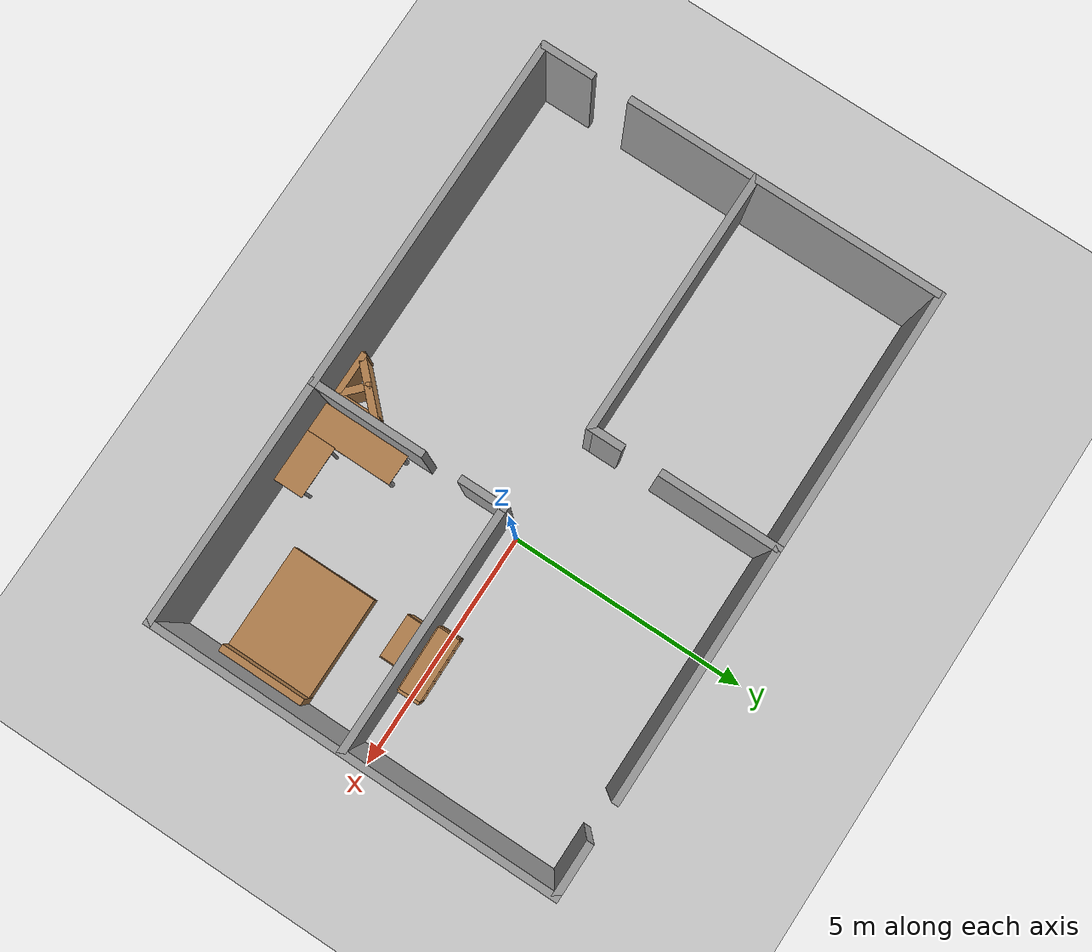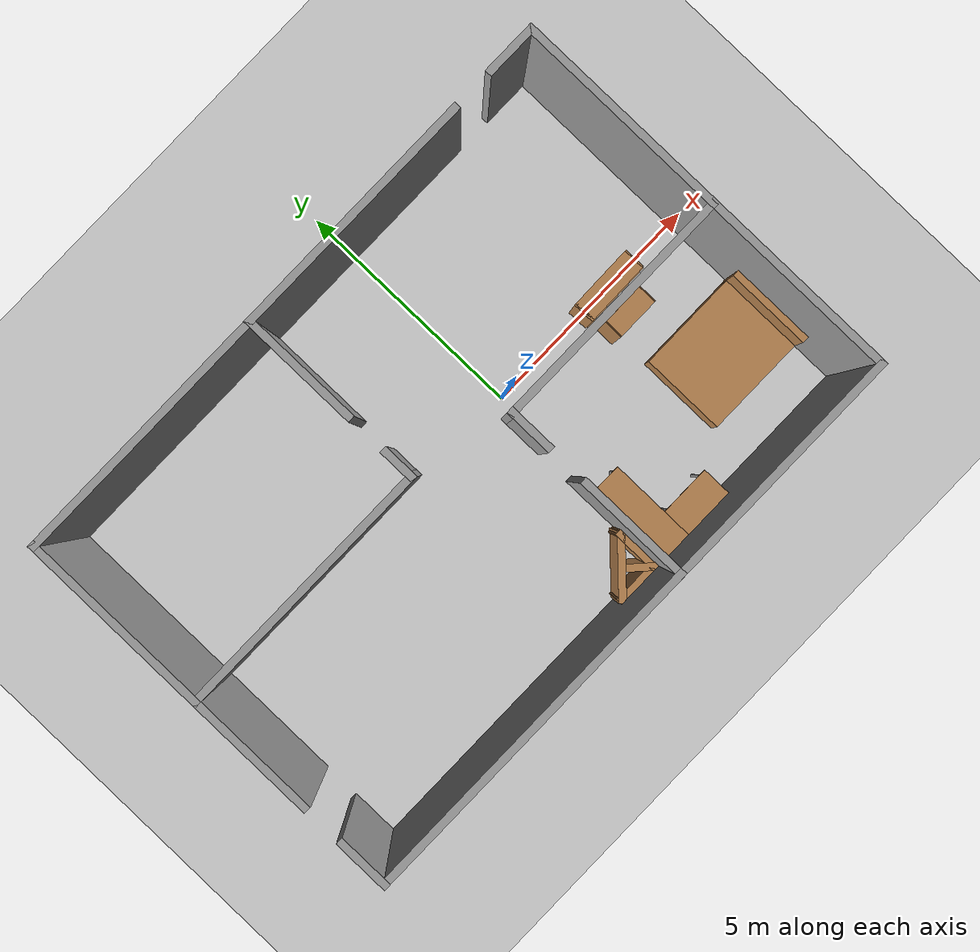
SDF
<sdf version="1.6">
 <world name="default">
  <model name="ground_plane">
   <static>1</static>
   <link name="link">
    <collision name="collision">
     <geometry><plane><normal>0 0 1</normal><size>100 100</size></plane></geometry>
     <surface><friction><ode><mu>100</mu><mu2>50</mu2></ode></friction></surface>
    </collision>
    <visual name="visual">
     <cast_shadows>0</cast_shadows>
     <geometry><plane><normal>0 0 1</normal><size>100 100</size></plane></geometry>
     <material>
      <script><uri>file://media/materials/scripts/gazebo.material</uri><name>Gazebo/Grey</name></script>
     </material>
    </visual>
   </link>
  </model>
  <model name="wall">
   <pose>-1.40388 -0.16507 0 0 -0 0</pose>
   <link name="Wall_1">
    <collision name="Wall_1_Collision">
     <geometry><box><size>5.5 0.15 2.5</size></box></geometry>
     <pose>0 0 1.25 0 -0 0</pose>
    </collision>
    <visual name="Wall_1_Visual">
     <pose>0 0 1.25 0 -0 0</pose>
     <geometry><box><size>5.5 0.15 2.5</size></box></geometry>
     <material>
      <script><uri>file://media/materials/scripts/gazebo.material</uri><name>Gazebo/Grey</name></script>
      <ambient>1 1 1 1</ambient>
     </material>
     <meta><layer>0</layer></meta>
    </visual>
    <pose>-3.5 4.175 0 0 -0 0</pose>
   </link>
   <link name="Wall_11">
    <collision name="Wall_11_Collision">
     <geometry><box><size>2.75 0.15 2.5</size></box></geometry>
     <pose>0 0 1.25 0 -0 0</pose>
    </collision>
    <visual name="Wall_11_Visual">
     <pose>0 0 1.25 0 -0 0</pose>
     <geometry><box><size>2.75 0.15 2.5</size></box></geometry>
     <material>
      <script><uri>file://media/materials/scripts/gazebo.material</uri><name>Gazebo/Grey</name></script>
      <ambient>1 1 1 1</ambient>
     </material>
     <meta><layer>0</layer></meta>
    </visual>
    <pose>-6.175 -0.975 0 0 0 -1.5708</pose>
   </link>
   <link name="Wall_117">
    <collision name="Wall_117_Collision">
     <geometry><box><size>0.75 0.15 2.5</size></box></geometry>
     <pose>0 0 1.25 0 -0 0</pose>
    </collision>
    <visual name="Wall_117_Visual">
     <pose>0 0 1.25 0 -0 0</pose>
     <geometry><box><size>0.75 0.15 2.5</size></box></geometry>
     <material>
      <script><uri>file://media/materials/scripts/gazebo.material</uri><name>Gazebo/Grey</name></script>
      <ambient>1 1 1 1</ambient>
     </material>
     <meta><layer>0</layer></meta>
    </visual>
    <pose>-0.825 0.625 0 0 0 -1.5708</pose>
   </link>
   <link name="Wall_119">
    <collision name="Wall_119_Collision">
     <geometry><box><size>5.5 0.15 2.5</size></box></geometry>
     <pose>0 0 1.25 0 -0 0</pose>
    </collision>
    <visual name="Wall_119_Visual">
     <pose>0 0 1.25 0 -0 0</pose>
     <geometry><box><size>5.5 0.15 2.5</size></box></geometry>
     <material>
      <script><uri>file://media/materials/scripts/gazebo.material</uri><name>Gazebo/Grey</name></script>
      <ambient>1 1 1 1</ambient>
     </material>
     <meta><layer>0</layer></meta>
    </visual>
    <pose>-3.5 0.325 0 0 -0 3.14159</pose>
   </link>
   <link name="Wall_122">
    <collision name="Wall_122_Collision">
     <geometry><box><size>5.15 0.15 2.5</size></box></geometry>
     <pose>0 0 1.25 0 -0 0</pose>
    </collision>
    <visual name="Wall_122_Visual">
     <pose>0 0 1.25 0 -0 0</pose>
     <geometry><box><size>5.15 0.15 2.5</size></box></geometry>
     <material>
      <script><uri>file://media/materials/scripts/gazebo.material</uri><name>Gazebo/Grey</name></script>
      <ambient>1 1 1 1</ambient>
     </material>
     <meta><layer>0</layer></meta>
    </visual>
    <pose>3.675 -0.175 0 0 -0 3.14159</pose>
   </link>
   <link name="Wall_124">
    <collision name="Wall_124_Collision">
     <geometry><box><size>1 0.15 2.5</size></box></geometry>
     <pose>0 0 1.25 0 -0 0</pose>
    </collision>
    <visual name="Wall_124_Visual">
     <pose>0 0 1.25 0 -0 0</pose>
     <geometry><box><size>1 0.15 2.5</size></box></geometry>
     <material>
      <script><uri>file://media/materials/scripts/gazebo.material</uri><name>Gazebo/Grey</name></script>
      <ambient>1 1 1 1</ambient>
     </material>
     <meta><layer>0</layer></meta>
    </visual>
    <pose>1.175 -0.6 0 0 0 -1.5708</pose>
   </link>
   <link name="Wall_141">
    <collision name="Wall_141_Collision">
     <geometry><box><size>2.4 0.15 2.5</size></box></geometry>
     <pose>0 0 1.25 0 -0 0</pose>
    </collision>
    <visual name="Wall_141_Visual">
     <pose>0 0 1.25 0 -0 0</pose>
     <geometry><box><size>2.4 0.15 2.5</size></box></geometry>
     <material>
      <script><uri>file://media/materials/scripts/gazebo.material</uri><name>Gazebo/Grey</name></script>
      <ambient>1 1 1 1</ambient>
     </material>
     <meta><layer>0</layer></meta>
    </visual>
    <pose>1.175 -3.05 0 0 0 -1.5708</pose>
   </link>
   <link name="Wall_15">
    <collision name="Wall_15_Collision">
     <geometry><box><size>1.15 0.15 2.5</size></box></geometry>
     <pose>0 0 1.25 0 -0 0</pose>
    </collision>
    <visual name="Wall_15_Visual">
     <pose>0 0 1.25 0 -0 0</pose>
     <geometry><box><size>1.15 0.15 2.5</size></box></geometry>
     <material>
      <script><uri>file://media/materials/scripts/gazebo.material</uri><name>Gazebo/Grey</name></script>
      <ambient>1 1 1 1</ambient>
     </material>
     <meta><layer>0</layer></meta>
    </visual>
    <pose>-6.175 -3.675 0 0 0 -1.5708</pose>
   </link>
   <link name="Wall_17">
    <collision name="Wall_17_Collision">
     <geometry><box><size>7.5 0.15 2.5</size></box></geometry>
     <pose>0 0 1.25 0 -0 0</pose>
    </collision>
    <visual name="Wall_17_Visual">
     <pose>0 0 1.25 0 -0 0</pose>
     <geometry><box><size>7.5 0.15 2.5</size></box></geometry>
     <material>
      <script><uri>file://media/materials/scripts/gazebo.material</uri><name>Gazebo/Grey</name></script>
      <ambient>1 1 1 1</ambient>
     </material>
     <meta><layer>0</layer></meta>
    </visual>
    <pose>-2.5 -4.175 0 0 -0 0</pose>
   </link>
   <link name="Wall_18">
    <collision name="Wall_18_Collision">
     <geometry><box><size>5.15 0.15 2.5</size></box></geometry>
     <pose>0 0 1.25 0 -0 0</pose>
    </collision>
    <visual name="Wall_18_Visual">
     <pose>0 0 1.25 0 -0 0</pose>
     <geometry><box><size>5.15 0.15 2.5</size></box></geometry>
     <material>
      <script><uri>file://media/materials/scripts/gazebo.material</uri><name>Gazebo/Grey</name></script>
      <ambient>1 1 1 1</ambient>
     </material>
     <meta><layer>0</layer></meta>
    </visual>
    <pose>3.675 -4.175 0 0 -0 0</pose>
   </link>
   <link name="Wall_2">
    <collision name="Wall_2_Collision">
     <geometry><box><size>5.25 0.15 2.5</size></box></geometry>
     <pose>0 0 1.25 0 -0 0</pose>
    </collision>
    <visual name="Wall_2_Visual">
     <pose>0 0 1.25 0 -0 0</pose>
     <geometry><box><size>5.25 0.15 2.5</size></box></geometry>
     <material>
      <script><uri>file://media/materials/scripts/gazebo.material</uri><name>Gazebo/Grey</name></script>
      <ambient>1 1 1 1</ambient>
     </material>
     <meta><layer>0</layer></meta>
    </visual>
    <pose>1.725 4.175 0 0 -0 0</pose>
   </link>
   <link name="Wall_20">
    <collision name="Wall_20_Collision">
     <geometry><box><size>4.5 0.15 2.5</size></box></geometry>
     <pose>0 0 1.25 0 -0 0</pose>
    </collision>
    <visual name="Wall_20_Visual">
     <pose>0 0 1.25 0 -0 0</pose>
     <geometry><box><size>4.5 0.15 2.5</size></box></geometry>
     <material>
      <script><uri>file://media/materials/scripts/gazebo.material</uri><name>Gazebo/Grey</name></script>
      <ambient>1 1 1 1</ambient>
     </material>
     <meta><layer>0</layer></meta>
    </visual>
    <pose>6.175 2 0 0 0 -1.5708</pose>
   </link>
   <link name="Wall_21">
    <collision name="Wall_21_Collision">
     <geometry><box><size>4.15 0.15 2.5</size></box></geometry>
     <pose>0 0 1.25 0 -0 0</pose>
    </collision>
    <visual name="Wall_21_Visual">
     <pose>0 0 1.25 0 -0 0</pose>
     <geometry><box><size>4.15 0.15 2.5</size></box></geometry>
     <material>
      <script><uri>file://media/materials/scripts/gazebo.material</uri><name>Gazebo/Grey</name></script>
      <ambient>1 1 1 1</ambient>
     </material>
     <meta><layer>0</layer></meta>
    </visual>
    <pose>6.175 -2.175 0 0 0 -1.5708</pose>
   </link>
   <link name="Wall_26">
    <collision name="Wall_26_Collision">
     <geometry><box><size>2.5 0.15 2.5</size></box></geometry>
     <pose>0 0 1.25 0 -0 0</pose>
    </collision>
    <visual name="Wall_26_Visual">
     <pose>0 0 1.25 0 -0 0</pose>
     <geometry><box><size>2.5 0.15 2.5</size></box></geometry>
     <material>
      <script><uri>file://media/materials/scripts/gazebo.material</uri><name>Gazebo/Grey</name></script>
      <ambient>1 1 1 1</ambient>
     </material>
     <meta><layer>0</layer></meta>
    </visual>
    <pose>-0.825 3 0 0 0 -1.5708</pose>
   </link>
   <link name="Wall_5">
    <collision name="Wall_5_Collision">
     <geometry><box><size>1.15 0.15 2.5</size></box></geometry>
     <pose>0 0 1.25 0 -0 0</pose>
    </collision>
    <visual name="Wall_5_Visual">
     <pose>0 0 1.25 0 -0 0</pose>
     <geometry><box><size>1.15 0.15 2.5</size></box></geometry>
     <material>
      <script><uri>file://media/materials/scripts/gazebo.material</uri><name>Gazebo/Grey</name></script>
      <ambient>1 1 1 1</ambient>
     </material>
     <meta><layer>0</layer></meta>
    </visual>
    <pose>5.675 4.175 0 0 -0 0</pose>
   </link>
   <link name="Wall_7">
    <collision name="Wall_7_Collision">
     <geometry><box><size>4 0.15 2.5</size></box></geometry>
     <pose>0 0 1.25 0 -0 0</pose>
    </collision>
    <visual name="Wall_7_Visual">
     <pose>0 0 1.25 0 -0 0</pose>
     <geometry><box><size>4 0.15 2.5</size></box></geometry>
     <material>
      <script><uri>file://media/materials/scripts/gazebo.material</uri><name>Gazebo/Grey</name></script>
      <ambient>1 1 1 1</ambient>
     </material>
     <meta><layer>0</layer></meta>
    </visual>
    <pose>-6.175 2.25 0 0 0 -1.5708</pose>
   </link>
   <static>1</static>
  </model>
  <model name="bookshelf">
   <static>1</static>
   <link name="link">
    <inertial><mass>1</mass></inertial>
    <collision name="back">
     <pose>0 0.005 0.6 0 -0 0</pose>
     <geometry><box><size>0.9 0.01 1.2</size></box></geometry>
    </collision>
    <visual name="visual1">
     <pose>0 0.005 0.6 0 -0 0</pose>
     <geometry><box><size>0.9 0.01 1.2</size></box></geometry>
     <material>
      <script><uri>file://media/materials/scripts/gazebo.material</uri><name>Gazebo/Wood</name></script>
     </material>
    </visual>
    <collision name="left_side">
     <pose>0.45 -0.195 0.6 0 -0 0</pose>
     <geometry><box><size>0.02 0.4 1.2</size></box></geometry>
    </collision>
    <visual name="visual2">
     <pose>0.45 -0.195 0.6 0 -0 0</pose>
     <geometry><box><size>0.02 0.4 1.2</size></box></geometry>
     <material>
      <script><uri>file://media/materials/scripts/gazebo.material</uri><name>Gazebo/Wood</name></script>
     </material>
    </visual>
    <collision name="right_side">
     <pose>-0.45 -0.195 0.6 0 -0 0</pose>
     <geometry><box><size>0.02 0.4 1.2</size></box></geometry>
    </collision>
    <visual name="visual3">
     <pose>-0.45 -0.195 0.6 0 -0 0</pose>
     <geometry><box><size>0.02 0.4 1.2</size></box></geometry>
     <material>
      <script><uri>file://media/materials/scripts/gazebo.material</uri><name>Gazebo/Wood</name></script>
     </material>
    </visual>
    <collision name="bottom">
     <pose>0 -0.195 0.03 0 -0 0</pose>
     <geometry><box><size>0.88 0.4 0.06</size></box></geometry>
    </collision>
    <visual name="visual4">
     <pose>0 -0.195 0.03 0 -0 0</pose>
     <geometry><box><size>0.88 0.4 0.06</size></box></geometry>
     <material>
      <script><uri>file://media/materials/scripts/gazebo.material</uri><name>Gazebo/Wood</name></script>
     </material>
    </visual>
    <collision name="top">
     <pose>0 -0.195 1.19 0 -0 0</pose>
     <geometry><box><size>0.88 0.4 0.02</size></box></geometry>
    </collision>
    <visual name="visual5">
     <pose>0 -0.195 1.19 0 -0 0</pose>
     <geometry><box><size>0.88 0.4 0.02</size></box></geometry>
     <material>
      <script><uri>file://media/materials/scripts/gazebo.material</uri><name>Gazebo/Wood</name></script>
     </material>
    </visual>
    <collision name="low_shelf">
     <pose>0 -0.195 0.43 0 -0 0</pose>
     <geometry><box><size>0.88 0.4 0.02</size></box></geometry>
    </collision>
    <visual name="visual6">
     <pose>0 -0.195 0.43 0 -0 0</pose>
     <geometry><box><size>0.88 0.4 0.02</size></box></geometry>
     <material>
      <script><uri>file://media/materials/scripts/gazebo.material</uri><name>Gazebo/Wood</name></script>
     </material>
    </visual>
    <collision name="high_shelf">
     <pose>0 -0.195 0.8 0 -0 0</pose>
     <geometry><box><size>0.88 0.4 0.02</size></box></geometry>
    </collision>
    <visual name="visual7">
     <pose>0 -0.195 0.8 0 -0 0</pose>
     <geometry><box><size>0.88 0.4 0.02</size></box></geometry>
     <material>
      <script><uri>file://media/materials/scripts/gazebo.material</uri><name>Gazebo/Wood</name></script>
     </material>
    </visual>
   </link>
   <pose>2.71035 -0.426982 0 0 -0 0</pose>
  </model>
  <model name="cabinet_0">
   <link name="cabinet_bottom_plate">
    <pose>0.01959 0.54724 0.029947 0 -0 0</pose>
    <inertial>
     <pose>0 0 -0.0004 0 -0 0</pose>
     <inertia><ixx>11.2547</ixx><ixy>0</ixy><ixz>0</ixz><iyy>1.26163</iyy><iyz>0</iyz><izz>12.5113</izz></inertia>
     <mass>74.616</mass>
    </inertial>
    <visual name="cabinet_bottom_plate_geom_visual">
     <pose>0 0 0.01 0 -0 0</pose>
     <geometry><box><size>0.45 1.34522 0.02</size></box></geometry>
     <material>
      <script><uri>file://media/materials/scripts/gazebo.material</uri><name>Gazebo/Wood</name></script>
      <shader type="pixel"><normal_map>__default__</normal_map></shader>
      <ambient>1 1 1 1</ambient>
      <diffuse>1 1 1 1</diffuse>
      <specular>0.2 0.2 0.2 1</specular>
      <emissive>0 0 0 1</emissive>
     </material>
    </visual>
    <visual name="cabinet_bottom_plate_geom_cabinet_back_plate_visual">
     <pose>0.235 0 0.51 0 -0 0</pose>
     <geometry><box><size>0.02 1.34522 1.02</size></box></geometry>
     <material>
      <script><uri>file://media/materials/scripts/gazebo.material</uri><name>Gazebo/Wood</name></script>
      <shader type="pixel"><normal_map>__default__</normal_map></shader>
      <ambient>1 1 1 1</ambient>
      <diffuse>1 1 1 1</diffuse>
      <specular>0.2 0.2 0.2 1</specular>
      <emissive>0 0 0 1</emissive>
     </material>
    </visual>
    <visual name="cabinet_bottom_plate_geom_cabinet_left_plate_visual">
     <pose>0 0.672609 0.51 0 -0 0</pose>
     <geometry><box><size>0.45 0.059588 1.02</size></box></geometry>
     <material>
      <script><uri>file://media/materials/scripts/gazebo.material</uri><name>Gazebo/Wood</name></script>
      <shader type="pixel"><normal_map>__default__</normal_map></shader>
      <ambient>1 1 1 1</ambient>
      <diffuse>1 1 1 1</diffuse>
      <specular>0.2 0.2 0.2 1</specular>
      <emissive>0 0 0 1</emissive>
     </material>
    </visual>
    <visual name="cabinet_bottom_plate_geom_cabinet_middle_plate_visual">
     <pose>0 0 0.51 0 -0 0</pose>
     <geometry><box><size>0.45 1.34522 0.02</size></box></geometry>
     <material>
      <script><uri>file://media/materials/scripts/gazebo.material</uri><name>Gazebo/Wood</name></script>
      <shader type="pixel"><normal_map>__default__</normal_map></shader>
      <ambient>1 1 1 1</ambient>
      <diffuse>1 1 1 1</diffuse>
      <specular>0.2 0.2 0.2 1</specular>
      <emissive>0 0 0 1</emissive>
     </material>
    </visual>
    <visual name="cabinet_bottom_plate_geom_cabinet_right_plate_visual">
     <pose>0 -0.672609 0.51 0 -0 0</pose>
     <geometry><box><size>0.45 0.059588 1.02</size></box></geometry>
     <material>
      <script><uri>file://media/materials/scripts/gazebo.material</uri><name>Gazebo/Wood</name></script>
      <shader type="pixel"><normal_map>__default__</normal_map></shader>
      <ambient>1 1 1 1</ambient>
      <diffuse>1 1 1 1</diffuse>
      <specular>0.2 0.2 0.2 1</specular>
      <emissive>0 0 0 1</emissive>
     </material>
    </visual>
    <visual name="cabinet_bottom_plate_geom_cabinet_top_plate_visual">
     <pose>0 0 1.01 0 -0 0</pose>
     <geometry><box><size>0.45 1.34522 0.02</size></box></geometry>
     <material>
      <script><uri>file://media/materials/scripts/gazebo.material</uri><name>Gazebo/Wood</name></script>
      <shader type="pixel"><normal_map>__default__</normal_map></shader>
      <ambient>1 1 1 1</ambient>
      <diffuse>1 1 1 1</diffuse>
      <specular>0.2 0.2 0.2 1</specular>
      <emissive>0 0 0 1</emissive>
     </material>
    </visual>
    <collision name="cabinet_bottom_plate_geom">
     <pose>0 0 0.01 0 -0 0</pose>
     <geometry><box><size>0.45 1.34522 0.02</size></box></geometry>
     <surface>
      <friction>
       <ode><mu>1</mu><mu2>1</mu2><fdir1>0 0 0</fdir1><slip1>0</slip1><slip2>0</slip2></ode>
       <torsional>
        <coefficient>1</coefficient>
        <patch_radius>0</patch_radius>
        <surface_radius>0</surface_radius>
        <use_patch_radius>1</use_patch_radius>
        <ode><slip>0</slip></ode>
       </torsional>
      </friction>
      <bounce><restitution_coefficient>0</restitution_coefficient><threshold>1e+06</threshold></bounce>
      <contact>
       <collide_without_contact>0</collide_without_contact>
       <collide_without_contact_bitmask>1</collide_without_contact_bitmask>
       <collide_bitmask>1</collide_bitmask>
       <ode>
        <soft_cfm>0</soft_cfm>
        <soft_erp>0.2</soft_erp>
        <kp>1e+13</kp>
        <kd>1</kd>
        <max_vel>0.01</max_vel>
        <min_depth>0</min_depth>
       </ode>
       <bullet>
        <split_impulse>1</split_impulse>
        <split_impulse_penetration_threshold>-0.01</split_impulse_penetration_threshold>
        <soft_cfm>0</soft_cfm>
        <soft_erp>0.2</soft_erp>
        <kp>1e+13</kp>
        <kd>1</kd>
       </bullet>
      </contact>
     </surface>
    </collision>
    <collision name="cabinet_bottom_plate_geom_cabinet_back_plate">
     <pose>0.235 0 0.51 0 -0 0</pose>
     <geometry><box><size>0.02 1.34523 1.02</size></box></geometry>
     <surface>
      <friction>
       <ode><mu>1</mu><mu2>1</mu2><fdir1>0 0 0</fdir1><slip1>0</slip1><slip2>0</slip2></ode>
       <torsional>
        <coefficient>1</coefficient>
        <patch_radius>0</patch_radius>
        <surface_radius>0</surface_radius>
        <use_patch_radius>1</use_patch_radius>
        <ode><slip>0</slip></ode>
       </torsional>
      </friction>
      <bounce><restitution_coefficient>0</restitution_coefficient><threshold>1e+06</threshold></bounce>
      <contact>
       <collide_without_contact>0</collide_without_contact>
       <collide_without_contact_bitmask>1</collide_without_contact_bitmask>
       <collide_bitmask>1</collide_bitmask>
       <ode>
        <soft_cfm>0</soft_cfm>
        <soft_erp>0.2</soft_erp>
        <kp>1e+13</kp>
        <kd>1</kd>
        <max_vel>0.01</max_vel>
        <min_depth>0</min_depth>
       </ode>
       <bullet>
        <split_impulse>1</split_impulse>
        <split_impulse_penetration_threshold>-0.01</split_impulse_penetration_threshold>
        <soft_cfm>0</soft_cfm>
        <soft_erp>0.2</soft_erp>
        <kp>1e+13</kp>
        <kd>1</kd>
       </bullet>
      </contact>
     </surface>
    </collision>
    <collision name="cabinet_bottom_plate_geom_cabinet_middle_plate">
     <pose>0 0 0.51 0 -0 0</pose>
     <geometry><box><size>0.45 1.34522 0.02</size></box></geometry>
     <surface>
      <friction>
       <ode><mu>1</mu><mu2>1</mu2><fdir1>0 0 0</fdir1><slip1>0</slip1><slip2>0</slip2></ode>
       <torsional>
        <coefficient>1</coefficient>
        <patch_radius>0</patch_radius>
        <surface_radius>0</surface_radius>
        <use_patch_radius>1</use_patch_radius>
        <ode><slip>0</slip></ode>
       </torsional>
      </friction>
      <bounce><restitution_coefficient>0</restitution_coefficient><threshold>1e+06</threshold></bounce>
      <contact>
       <collide_without_contact>0</collide_without_contact>
       <collide_without_contact_bitmask>1</collide_without_contact_bitmask>
       <collide_bitmask>1</collide_bitmask>
       <ode>
        <soft_cfm>0</soft_cfm>
        <soft_erp>0.2</soft_erp>
        <kp>1e+13</kp>
        <kd>1</kd>
        <max_vel>0.01</max_vel>
        <min_depth>0</min_depth>
       </ode>
       <bullet>
        <split_impulse>1</split_impulse>
        <split_impulse_penetration_threshold>-0.01</split_impulse_penetration_threshold>
        <soft_cfm>0</soft_cfm>
        <soft_erp>0.2</soft_erp>
        <kp>1e+13</kp>
        <kd>1</kd>
       </bullet>
      </contact>
     </surface>
    </collision>
    <collision name="cabinet_bottom_plate_geom_cabinet_left_plate">
     <pose>0 0.672609 0.51 0 -0 0</pose>
     <geometry><box><size>0.45 0.059588 1.02</size></box></geometry>
     <surface>
      <friction>
       <ode><mu>1</mu><mu2>1</mu2><fdir1>0 0 0</fdir1><slip1>0</slip1><slip2>0</slip2></ode>
       <torsional>
        <coefficient>1</coefficient>
        <patch_radius>0</patch_radius>
        <surface_radius>0</surface_radius>
        <use_patch_radius>1</use_patch_radius>
        <ode><slip>0</slip></ode>
       </torsional>
      </friction>
      <bounce><restitution_coefficient>0</restitution_coefficient><threshold>1e+06</threshold></bounce>
      <contact>
       <collide_without_contact>0</collide_without_contact>
       <collide_without_contact_bitmask>1</collide_without_contact_bitmask>
       <collide_bitmask>1</collide_bitmask>
       <ode>
        <soft_cfm>0</soft_cfm>
        <soft_erp>0.2</soft_erp>
        <kp>1e+13</kp>
        <kd>1</kd>
        <max_vel>0.01</max_vel>
        <min_depth>0</min_depth>
       </ode>
       <bullet>
        <split_impulse>1</split_impulse>
        <split_impulse_penetration_threshold>-0.01</split_impulse_penetration_threshold>
        <soft_cfm>0</soft_cfm>
        <soft_erp>0.2</soft_erp>
        <kp>1e+13</kp>
        <kd>1</kd>
       </bullet>
      </contact>
     </surface>
    </collision>
    <collision name="cabinet_bottom_plate_geom_cabinet_right_plate">
     <pose>0 -0.672609 0.51 0 -0 0</pose>
     <geometry><box><size>0.45 0.059588 1.02</size></box></geometry>
     <surface>
      <friction>
       <ode><mu>1</mu><mu2>1</mu2><fdir1>0 0 0</fdir1><slip1>0</slip1><slip2>0</slip2></ode>
       <torsional>
        <coefficient>1</coefficient>
        <patch_radius>0</patch_radius>
        <surface_radius>0</surface_radius>
        <use_patch_radius>1</use_patch_radius>
        <ode><slip>0</slip></ode>
       </torsional>
      </friction>
      <bounce><restitution_coefficient>0</restitution_coefficient><threshold>1e+06</threshold></bounce>
      <contact>
       <collide_without_contact>0</collide_without_contact>
       <collide_without_contact_bitmask>1</collide_without_contact_bitmask>
       <collide_bitmask>1</collide_bitmask>
       <ode>
        <soft_cfm>0</soft_cfm>
        <soft_erp>0.2</soft_erp>
        <kp>1e+13</kp>
        <kd>1</kd>
        <max_vel>0.01</max_vel>
        <min_depth>0</min_depth>
       </ode>
       <bullet>
        <split_impulse>1</split_impulse>
        <split_impulse_penetration_threshold>-0.01</split_impulse_penetration_threshold>
        <soft_cfm>0</soft_cfm>
        <soft_erp>0.2</soft_erp>
        <kp>1e+13</kp>
        <kd>1</kd>
       </bullet>
      </contact>
     </surface>
    </collision>
    <collision name="cabinet_bottom_plate_geom_cabinet_top_plate">
     <pose>0 0 1.01 0 -0 0</pose>
     <geometry><box><size>0.45 1.34522 0.02</size></box></geometry>
     <surface>
      <friction>
       <ode><mu>1</mu><mu2>1</mu2><fdir1>0 0 0</fdir1><slip1>0</slip1><slip2>0</slip2></ode>
       <torsional>
        <coefficient>1</coefficient>
        <patch_radius>0</patch_radius>
        <surface_radius>0</surface_radius>
        <use_patch_radius>1</use_patch_radius>
        <ode><slip>0</slip></ode>
       </torsional>
      </friction>
      <bounce><restitution_coefficient>0</restitution_coefficient><threshold>1e+06</threshold></bounce>
      <contact>
       <collide_without_contact>0</collide_without_contact>
       <collide_without_contact_bitmask>1</collide_without_contact_bitmask>
       <collide_bitmask>1</collide_bitmask>
       <ode>
        <soft_cfm>0</soft_cfm>
        <soft_erp>0.2</soft_erp>
        <kp>1e+13</kp>
        <kd>1</kd>
        <max_vel>0.01</max_vel>
        <min_depth>0</min_depth>
       </ode>
       <bullet>
        <split_impulse>1</split_impulse>
        <split_impulse_penetration_threshold>-0.01</split_impulse_penetration_threshold>
        <soft_cfm>0</soft_cfm>
        <soft_erp>0.2</soft_erp>
        <kp>1e+13</kp>
        <kd>1</kd>
       </bullet>
      </contact>
     </surface>
    </collision>
   </link>
   <static>1</static>
   <pose>2.26774 0.007381 0 0 0 -1.55636</pose>
  </model>
  <model name="table_0_0">
   <link name="link">
    <pose>0.121367 0.101535 0 0 -0 0</pose>
    <inertial>
     <inertia><ixx>0</ixx><ixy>0</ixy><ixz>0</ixz><iyy>0</iyy><iyz>0</iyz><izz>0</izz></inertia>
     <mass>0</mass>
    </inertial>
    <visual name="visual1">
     <pose>0 0 1 0 -0 0</pose>
     <geometry><box><size>1.0961 0.633078 0.03</size></box></geometry>
     <material>
      <script><uri>file://media/materials/scripts/gazebo.material</uri><name>Gazebo/Wood</name></script>
      <shader type="pixel"><normal_map>__default__</normal_map></shader>
      <ambient>1 1 1 1</ambient>
      <diffuse>1 1 1 1</diffuse>
      <specular>0.2 0.2 0.2 1</specular>
      <emissive>0 0 0 1</emissive>
     </material>
    </visual>
    <visual name="front_right_leg">
     <pose>0.45 -0.25 0.5 0 -0 0</pose>
     <geometry><cylinder><radius>0.0304</radius><length>1</length></cylinder></geometry>
     <material>
      <script><uri>file://media/materials/scripts/gazebo.material</uri><name>Gazebo/Grey</name></script>
      <shader type="pixel"><normal_map>__default__</normal_map></shader>
      <ambient>0.3 0.3 0.3 1</ambient>
      <diffuse>0.7 0.7 0.7 1</diffuse>
      <specular>0.01 0.01 0.01 1</specular>
      <emissive>0 0 0 1</emissive>
     </material>
    </visual>
    <visual name="front_left_leg">
     <pose>0.45 0.25 0.5 0 -0 0</pose>
     <geometry><cylinder><radius>0.0304</radius><length>1</length></cylinder></geometry>
     <material>
      <script><uri>file://media/materials/scripts/gazebo.material</uri><name>Gazebo/Grey</name></script>
      <shader type="pixel"><normal_map>__default__</normal_map></shader>
      <ambient>0.3 0.3 0.3 1</ambient>
      <diffuse>0.7 0.7 0.7 1</diffuse>
      <specular>0.01 0.01 0.01 1</specular>
      <emissive>0 0 0 1</emissive>
     </material>
    </visual>
    <visual name="back_right_leg">
     <pose>-0.45 -0.25 0.5 0 -0 0</pose>
     <geometry><cylinder><radius>0.0304</radius><length>1</length></cylinder></geometry>
     <material>
      <script><uri>file://media/materials/scripts/gazebo.material</uri><name>Gazebo/Grey</name></script>
      <shader type="pixel"><normal_map>__default__</normal_map></shader>
      <ambient>0.3 0.3 0.3 1</ambient>
      <diffuse>0.7 0.7 0.7 1</diffuse>
      <specular>0.01 0.01 0.01 1</specular>
      <emissive>0 0 0 1</emissive>
     </material>
    </visual>
    <visual name="back_left_leg">
     <pose>-0.45 0.25 0.5 0 -0 0</pose>
     <geometry><cylinder><radius>0.0304</radius><length>1</length></cylinder></geometry>
     <material>
      <script><uri>file://media/materials/scripts/gazebo.material</uri><name>Gazebo/Grey</name></script>
      <shader type="pixel"><normal_map>__default__</normal_map></shader>
      <ambient>0.3 0.3 0.3 1</ambient>
      <diffuse>0.7 0.7 0.7 1</diffuse>
      <specular>0.01 0.01 0.01 1</specular>
      <emissive>0 0 0 1</emissive>
     </material>
    </visual>
    <collision name="surface">
     <pose>0 0 1 0 -0 0</pose>
     <geometry><box><size>1.0961 0.633078 0.03</size></box></geometry>
     <surface>
      <friction>
       <ode><mu>0.6</mu><mu2>0.6</mu2><fdir1>0 0 0</fdir1><slip1>0</slip1><slip2>0</slip2></ode>
       <torsional>
        <coefficient>1</coefficient>
        <patch_radius>0</patch_radius>
        <surface_radius>0</surface_radius>
        <use_patch_radius>1</use_patch_radius>
        <ode><slip>0</slip></ode>
       </torsional>
      </friction>
      <bounce><restitution_coefficient>0</restitution_coefficient><threshold>1e+06</threshold></bounce>
      <contact>
       <collide_without_contact>0</collide_without_contact>
       <collide_without_contact_bitmask>1</collide_without_contact_bitmask>
       <collide_bitmask>1</collide_bitmask>
       <ode>
        <soft_cfm>0</soft_cfm>
        <soft_erp>0.2</soft_erp>
        <kp>1e+13</kp>
        <kd>1</kd>
        <max_vel>0.01</max_vel>
        <min_depth>0</min_depth>
       </ode>
       <bullet>
        <split_impulse>1</split_impulse>
        <split_impulse_penetration_threshold>-0.01</split_impulse_penetration_threshold>
        <soft_cfm>0</soft_cfm>
        <soft_erp>0.2</soft_erp>
        <kp>1e+13</kp>
        <kd>1</kd>
       </bullet>
      </contact>
     </surface>
    </collision>
    <collision name="front_left_leg">
     <pose>0.45 0.25 0.5 0 -0 0</pose>
     <geometry><cylinder><radius>0.0304</radius><length>1</length></cylinder></geometry>
     <surface>
      <friction>
       <ode><mu>1</mu><mu2>1</mu2><fdir1>0 0 0</fdir1><slip1>0</slip1><slip2>0</slip2></ode>
       <torsional>
        <coefficient>1</coefficient>
        <patch_radius>0</patch_radius>
        <surface_radius>0</surface_radius>
        <use_patch_radius>1</use_patch_radius>
        <ode><slip>0</slip></ode>
       </torsional>
      </friction>
      <bounce><restitution_coefficient>0</restitution_coefficient><threshold>1e+06</threshold></bounce>
      <contact>
       <collide_without_contact>0</collide_without_contact>
       <collide_without_contact_bitmask>1</collide_without_contact_bitmask>
       <collide_bitmask>1</collide_bitmask>
       <ode>
        <soft_cfm>0</soft_cfm>
        <soft_erp>0.2</soft_erp>
        <kp>1e+13</kp>
        <kd>1</kd>
        <max_vel>0.01</max_vel>
        <min_depth>0</min_depth>
       </ode>
       <bullet>
        <split_impulse>1</split_impulse>
        <split_impulse_penetration_threshold>-0.01</split_impulse_penetration_threshold>
        <soft_cfm>0</soft_cfm>
        <soft_erp>0.2</soft_erp>
        <kp>1e+13</kp>
        <kd>1</kd>
       </bullet>
      </contact>
     </surface>
    </collision>
    <collision name="front_right_leg">
     <pose>0.45 -0.25 0.5 0 -0 0</pose>
     <geometry><cylinder><radius>0.0304</radius><length>1</length></cylinder></geometry>
     <surface>
      <friction>
       <ode><mu>1</mu><mu2>1</mu2><fdir1>0 0 0</fdir1><slip1>0</slip1><slip2>0</slip2></ode>
       <torsional>
        <coefficient>1</coefficient>
        <patch_radius>0</patch_radius>
        <surface_radius>0</surface_radius>
        <use_patch_radius>1</use_patch_radius>
        <ode><slip>0</slip></ode>
       </torsional>
      </friction>
      <bounce><restitution_coefficient>0</restitution_coefficient><threshold>1e+06</threshold></bounce>
      <contact>
       <collide_without_contact>0</collide_without_contact>
       <collide_without_contact_bitmask>1</collide_without_contact_bitmask>
       <collide_bitmask>1</collide_bitmask>
       <ode>
        <soft_cfm>0</soft_cfm>
        <soft_erp>0.2</soft_erp>
        <kp>1e+13</kp>
        <kd>1</kd>
        <max_vel>0.01</max_vel>
        <min_depth>0</min_depth>
       </ode>
       <bullet>
        <split_impulse>1</split_impulse>
        <split_impulse_penetration_threshold>-0.01</split_impulse_penetration_threshold>
        <soft_cfm>0</soft_cfm>
        <soft_erp>0.2</soft_erp>
        <kp>1e+13</kp>
        <kd>1</kd>
       </bullet>
      </contact>
     </surface>
    </collision>
    <collision name="back_right_leg">
     <pose>-0.45 -0.25 0.5 0 -0 0</pose>
     <geometry><cylinder><radius>0.0304</radius><length>1</length></cylinder></geometry>
     <surface>
      <friction>
       <ode><mu>1</mu><mu2>1</mu2><fdir1>0 0 0</fdir1><slip1>0</slip1><slip2>0</slip2></ode>
       <torsional>
        <coefficient>1</coefficient>
        <patch_radius>0</patch_radius>
        <surface_radius>0</surface_radius>
        <use_patch_radius>1</use_patch_radius>
        <ode><slip>0</slip></ode>
       </torsional>
      </friction>
      <bounce><restitution_coefficient>0</restitution_coefficient><threshold>1e+06</threshold></bounce>
      <contact>
       <collide_without_contact>0</collide_without_contact>
       <collide_without_contact_bitmask>1</collide_without_contact_bitmask>
       <collide_bitmask>1</collide_bitmask>
       <ode>
        <soft_cfm>0</soft_cfm>
        <soft_erp>0.2</soft_erp>
        <kp>1e+13</kp>
        <kd>1</kd>
        <max_vel>0.01</max_vel>
        <min_depth>0</min_depth>
       </ode>
       <bullet>
        <split_impulse>1</split_impulse>
        <split_impulse_penetration_threshold>-0.01</split_impulse_penetration_threshold>
        <soft_cfm>0</soft_cfm>
        <soft_erp>0.2</soft_erp>
        <kp>1e+13</kp>
        <kd>1</kd>
       </bullet>
      </contact>
     </surface>
    </collision>
    <collision name="back_left_leg">
     <pose>-0.45 0.25 0.5 0 -0 0</pose>
     <geometry><cylinder><radius>0.0304</radius><length>1</length></cylinder></geometry>
     <surface>
      <friction>
       <ode><mu>1</mu><mu2>1</mu2><fdir1>0 0 0</fdir1><slip1>0</slip1><slip2>0</slip2></ode>
       <torsional>
        <coefficient>1</coefficient>
        <patch_radius>0</patch_radius>
        <surface_radius>0</surface_radius>
        <use_patch_radius>1</use_patch_radius>
        <ode><slip>0</slip></ode>
       </torsional>
      </friction>
      <bounce><restitution_coefficient>0</restitution_coefficient><threshold>1e+06</threshold></bounce>
      <contact>
       <collide_without_contact>0</collide_without_contact>
       <collide_without_contact_bitmask>1</collide_without_contact_bitmask>
       <collide_bitmask>1</collide_bitmask>
       <ode>
        <soft_cfm>0</soft_cfm>
        <soft_erp>0.2</soft_erp>
        <kp>1e+13</kp>
        <kd>1</kd>
        <max_vel>0.01</max_vel>
        <min_depth>0</min_depth>
       </ode>
       <bullet>
        <split_impulse>1</split_impulse>
        <split_impulse_penetration_threshold>-0.01</split_impulse_penetration_threshold>
        <soft_cfm>0</soft_cfm>
        <soft_erp>0.2</soft_erp>
        <kp>1e+13</kp>
        <kd>1</kd>
       </bullet>
      </contact>
     </surface>
    </collision>
   </link>
   <static>1</static>
   <pose>0.906403 -4.06722 0 0 -0 0</pose>
  </model>
  <model name="table_1">
   <link name="link">
    <pose>-0.016991 0.115864 0 0 -0 0.025203</pose>
    <inertial>
     <inertia><ixx>0</ixx><ixy>0</ixy><ixz>0</ixz><iyy>0</iyy><iyz>0</iyz><izz>0</izz></inertia>
     <mass>0</mass>
    </inertial>
    <visual name="visual1">
     <pose>0 0 1 0 -0 0</pose>
     <geometry><box><size>1.82215 0.633078 0.03</size></box></geometry>
     <material>
      <script><uri>file://media/materials/scripts/gazebo.material</uri><name>Gazebo/Wood</name></script>
      <shader type="pixel"><normal_map>__default__</normal_map></shader>
      <ambient>1 1 1 1</ambient>
      <diffuse>1 1 1 1</diffuse>
      <specular>0.2 0.2 0.2 1</specular>
      <emissive>0 0 0 1</emissive>
     </material>
    </visual>
    <visual name="front_right_leg">
     <pose>0.8 -0.25 0.5 0 -0 0</pose>
     <geometry><cylinder><radius>0.0507996</radius><length>1</length></cylinder></geometry>
     <material>
      <script><uri>file://media/materials/scripts/gazebo.material</uri><name>Gazebo/Grey</name></script>
      <shader type="pixel"><normal_map>__default__</normal_map></shader>
      <ambient>0.3 0.3 0.3 1</ambient>
      <diffuse>0.7 0.7 0.7 1</diffuse>
      <specular>0.01 0.01 0.01 1</specular>
      <emissive>0 0 0 1</emissive>
     </material>
    </visual>
    <visual name="front_left_leg">
     <pose>0.8 0.25 0.5 0 -0 0</pose>
     <geometry><cylinder><radius>0.0507996</radius><length>1</length></cylinder></geometry>
     <material>
      <script><uri>file://media/materials/scripts/gazebo.material</uri><name>Gazebo/Grey</name></script>
      <shader type="pixel"><normal_map>__default__</normal_map></shader>
      <ambient>0.3 0.3 0.3 1</ambient>
      <diffuse>0.7 0.7 0.7 1</diffuse>
      <specular>0.01 0.01 0.01 1</specular>
      <emissive>0 0 0 1</emissive>
     </material>
    </visual>
    <visual name="back_right_leg">
     <pose>-0.8 -0.25 0.5 0 -0 0</pose>
     <geometry><cylinder><radius>0.0507996</radius><length>1</length></cylinder></geometry>
     <material>
      <script><uri>file://media/materials/scripts/gazebo.material</uri><name>Gazebo/Grey</name></script>
      <shader type="pixel"><normal_map>__default__</normal_map></shader>
      <ambient>0.3 0.3 0.3 1</ambient>
      <diffuse>0.7 0.7 0.7 1</diffuse>
      <specular>0.01 0.01 0.01 1</specular>
      <emissive>0 0 0 1</emissive>
     </material>
    </visual>
    <visual name="back_left_leg">
     <pose>-0.8 0.25 0.5 0 -0 0</pose>
     <geometry><cylinder><radius>0.0507996</radius><length>1</length></cylinder></geometry>
     <material>
      <script><uri>file://media/materials/scripts/gazebo.material</uri><name>Gazebo/Grey</name></script>
      <shader type="pixel"><normal_map>__default__</normal_map></shader>
      <ambient>0.3 0.3 0.3 1</ambient>
      <diffuse>0.7 0.7 0.7 1</diffuse>
      <specular>0.01 0.01 0.01 1</specular>
      <emissive>0 0 0 1</emissive>
     </material>
    </visual>
    <collision name="surface">
     <pose>0 0 1 0 -0 0</pose>
     <geometry><box><size>1.82215 0.633078 0.03</size></box></geometry>
     <surface>
      <friction>
       <ode><mu>0.6</mu><mu2>0.6</mu2><fdir1>0 0 0</fdir1><slip1>0</slip1><slip2>0</slip2></ode>
       <torsional>
        <coefficient>1</coefficient>
        <patch_radius>0</patch_radius>
        <surface_radius>0</surface_radius>
        <use_patch_radius>1</use_patch_radius>
        <ode><slip>0</slip></ode>
       </torsional>
      </friction>
      <bounce><restitution_coefficient>0</restitution_coefficient><threshold>1e+06</threshold></bounce>
      <contact>
       <collide_without_contact>0</collide_without_contact>
       <collide_without_contact_bitmask>1</collide_without_contact_bitmask>
       <collide_bitmask>1</collide_bitmask>
       <ode>
        <soft_cfm>0</soft_cfm>
        <soft_erp>0.2</soft_erp>
        <kp>1e+13</kp>
        <kd>1</kd>
        <max_vel>0.01</max_vel>
        <min_depth>0</min_depth>
       </ode>
       <bullet>
        <split_impulse>1</split_impulse>
        <split_impulse_penetration_threshold>-0.01</split_impulse_penetration_threshold>
        <soft_cfm>0</soft_cfm>
        <soft_erp>0.2</soft_erp>
        <kp>1e+13</kp>
        <kd>1</kd>
       </bullet>
      </contact>
     </surface>
    </collision>
    <collision name="front_right_leg">
     <pose>0.8 -0.25 0.5 0 -0 0</pose>
     <geometry><cylinder><radius>0.0508</radius><length>1</length></cylinder></geometry>
     <surface>
      <friction>
       <ode><mu>1</mu><mu2>1</mu2><fdir1>0 0 0</fdir1><slip1>0</slip1><slip2>0</slip2></ode>
       <torsional>
        <coefficient>1</coefficient>
        <patch_radius>0</patch_radius>
        <surface_radius>0</surface_radius>
        <use_patch_radius>1</use_patch_radius>
        <ode><slip>0</slip></ode>
       </torsional>
      </friction>
      <bounce><restitution_coefficient>0</restitution_coefficient><threshold>1e+06</threshold></bounce>
      <contact>
       <collide_without_contact>0</collide_without_contact>
       <collide_without_contact_bitmask>1</collide_without_contact_bitmask>
       <collide_bitmask>1</collide_bitmask>
       <ode>
        <soft_cfm>0</soft_cfm>
        <soft_erp>0.2</soft_erp>
        <kp>1e+13</kp>
        <kd>1</kd>
        <max_vel>0.01</max_vel>
        <min_depth>0</min_depth>
       </ode>
       <bullet>
        <split_impulse>1</split_impulse>
        <split_impulse_penetration_threshold>-0.01</split_impulse_penetration_threshold>
        <soft_cfm>0</soft_cfm>
        <soft_erp>0.2</soft_erp>
        <kp>1e+13</kp>
        <kd>1</kd>
       </bullet>
      </contact>
     </surface>
    </collision>
    <collision name="front_left_leg">
     <pose>0.8 0.25 0.5 0 -0 0</pose>
     <geometry><cylinder><radius>0.0508</radius><length>1</length></cylinder></geometry>
     <surface>
      <friction>
       <ode><mu>1</mu><mu2>1</mu2><fdir1>0 0 0</fdir1><slip1>0</slip1><slip2>0</slip2></ode>
       <torsional>
        <coefficient>1</coefficient>
        <patch_radius>0</patch_radius>
        <surface_radius>0</surface_radius>
        <use_patch_radius>1</use_patch_radius>
        <ode><slip>0</slip></ode>
       </torsional>
      </friction>
      <bounce><restitution_coefficient>0</restitution_coefficient><threshold>1e+06</threshold></bounce>
      <contact>
       <collide_without_contact>0</collide_without_contact>
       <collide_without_contact_bitmask>1</collide_without_contact_bitmask>
       <collide_bitmask>1</collide_bitmask>
       <ode>
        <soft_cfm>0</soft_cfm>
        <soft_erp>0.2</soft_erp>
        <kp>1e+13</kp>
        <kd>1</kd>
        <max_vel>0.01</max_vel>
        <min_depth>0</min_depth>
       </ode>
       <bullet>
        <split_impulse>1</split_impulse>
        <split_impulse_penetration_threshold>-0.01</split_impulse_penetration_threshold>
        <soft_cfm>0</soft_cfm>
        <soft_erp>0.2</soft_erp>
        <kp>1e+13</kp>
        <kd>1</kd>
       </bullet>
      </contact>
     </surface>
    </collision>
    <collision name="back_right_leg">
     <pose>-0.8 -0.25 0.5 0 -0 0</pose>
     <geometry><cylinder><radius>0.0508</radius><length>1</length></cylinder></geometry>
     <surface>
      <friction>
       <ode><mu>1</mu><mu2>1</mu2><fdir1>0 0 0</fdir1><slip1>0</slip1><slip2>0</slip2></ode>
       <torsional>
        <coefficient>1</coefficient>
        <patch_radius>0</patch_radius>
        <surface_radius>0</surface_radius>
        <use_patch_radius>1</use_patch_radius>
        <ode><slip>0</slip></ode>
       </torsional>
      </friction>
      <bounce><restitution_coefficient>0</restitution_coefficient><threshold>1e+06</threshold></bounce>
      <contact>
       <collide_without_contact>0</collide_without_contact>
       <collide_without_contact_bitmask>1</collide_without_contact_bitmask>
       <collide_bitmask>1</collide_bitmask>
       <ode>
        <soft_cfm>0</soft_cfm>
        <soft_erp>0.2</soft_erp>
        <kp>1e+13</kp>
        <kd>1</kd>
        <max_vel>0.01</max_vel>
        <min_depth>0</min_depth>
       </ode>
       <bullet>
        <split_impulse>1</split_impulse>
        <split_impulse_penetration_threshold>-0.01</split_impulse_penetration_threshold>
        <soft_cfm>0</soft_cfm>
        <soft_erp>0.2</soft_erp>
        <kp>1e+13</kp>
        <kd>1</kd>
       </bullet>
      </contact>
     </surface>
    </collision>
    <collision name="back_left_leg">
     <pose>-0.8 0.25 0.5 0 -0 0</pose>
     <geometry><cylinder><radius>0.0508</radius><length>1</length></cylinder></geometry>
     <surface>
      <friction>
       <ode><mu>1</mu><mu2>1</mu2><fdir1>0 0 0</fdir1><slip1>0</slip1><slip2>0</slip2></ode>
       <torsional>
        <coefficient>1</coefficient>
        <patch_radius>0</patch_radius>
        <surface_radius>0</surface_radius>
        <use_patch_radius>1</use_patch_radius>
        <ode><slip>0</slip></ode>
       </torsional>
      </friction>
      <bounce><restitution_coefficient>0</restitution_coefficient><threshold>1e+06</threshold></bounce>
      <contact>
       <collide_without_contact>0</collide_without_contact>
       <collide_without_contact_bitmask>1</collide_without_contact_bitmask>
       <collide_bitmask>1</collide_bitmask>
       <ode>
        <soft_cfm>0</soft_cfm>
        <soft_erp>0.2</soft_erp>
        <kp>1e+13</kp>
        <kd>1</kd>
        <max_vel>0.01</max_vel>
        <min_depth>0</min_depth>
       </ode>
       <bullet>
        <split_impulse>1</split_impulse>
        <split_impulse_penetration_threshold>-0.01</split_impulse_penetration_threshold>
        <soft_cfm>0</soft_cfm>
        <soft_erp>0.2</soft_erp>
        <kp>1e+13</kp>
        <kd>1</kd>
       </bullet>
      </contact>
     </surface>
    </collision>
   </link>
   <static>1</static>
   <pose>0.300002 -3.3387 0 0 -0 1.54519</pose>
  </model>
  <model name="bed">
   <pose>3.55685 -2.44204 0 0 -0 0</pose>
   <link name="Wall_0">
    <collision name="Wall_0_Collision">
     <geometry><box><size>2.15 1.8 0.5</size></box></geometry>
     <pose>0 0 0.25 0 -0 0</pose>
    </collision>
    <visual name="Wall_0_Visual">
     <pose>0 0 0.25 0 -0 0</pose>
     <geometry><box><size>2.15 1.8 0.5</size></box></geometry>
     <material>
      <script><uri>file://media/materials/scripts/gazebo.material</uri><name>Gazebo/Wood</name></script>
      <ambient>0.435294 0.796078 0.67451 1</ambient>
     </material>
     <meta><layer>0</layer></meta>
    </visual>
    <pose>-0.0725 -0.0025 0 0 -0 0</pose>
   </link>
   <link name="Wall_2">
    <collision name="Wall_2_Collision">
     <geometry><box><size>1.8 0.15 1</size></box></geometry>
     <pose>0 0 0.5 0 -0 0</pose>
    </collision>
    <visual name="Wall_2_Visual">
     <pose>0 0 0.5 0 -0 0</pose>
     <geometry><box><size>1.8 0.15 1</size></box></geometry>
     <material>
      <script><uri>file://media/materials/scripts/gazebo.material</uri><name>Gazebo/Wood</name></script>
      <ambient>0.996078 0.47451 0.0196078 1</ambient>
     </material>
     <meta><layer>0</layer></meta>
    </visual>
    <pose>1.0725 0.0025 0 0 0 -1.5708</pose>
   </link>
   <static>1</static>
  </model>
  <model name="tv">
   <pose>-0.792885 -3.78633 0 0 -0 0</pose>
   <link name="Wall_3">
    <collision name="Wall_3_Collision">
     <geometry><box><size>1 0.15 1</size></box></geometry>
     <pose>0 0 0.5 0 -0 0</pose>
    </collision>
    <visual name="Wall_3_Visual">
     <pose>0 0 0.5 0 -0 0</pose>
     <geometry><box><size>1 0.15 1</size></box></geometry>
     <material>
      <script><uri>file://media/materials/scripts/gazebo.material</uri><name>Gazebo/Wood</name></script>
      <ambient>0.996078 0.47451 0.0196078 1</ambient>
     </material>
     <meta><layer>0</layer></meta>
    </visual>
    <pose>0.425 0 0 0 0 -1.5708</pose>
   </link>
   <link name="Wall_4">
    <collision name="Wall_4_Collision">
     <geometry><box><size>1 0.15 1</size></box></geometry>
     <pose>0 0 0.5 0 -0 0</pose>
    </collision>
    <visual name="Wall_4_Visual">
     <pose>0 0 0.5 0 -0 0</pose>
     <geometry><box><size>1 0.15 1</size></box></geometry>
     <material>
      <script><uri>file://media/materials/scripts/gazebo.material</uri><name>Gazebo/Wood</name></script>
      <ambient>0.996078 0.47451 0.0196078 1</ambient>
     </material>
     <meta><layer>0</layer></meta>
    </visual>
    <pose>0 -0.425 0 0 -0 3.14159</pose>
   </link>
   <link name="Wall_5">
    <collision name="Wall_5_Collision">
     <geometry><box><size>1.35208 0.15 1</size></box></geometry>
     <pose>0 0 0.5 0 -0 0</pose>
    </collision>
    <visual name="Wall_5_Visual">
     <pose>0 0 0.5 0 -0 0</pose>
     <geometry><box><size>1.35208 0.15 1</size></box></geometry>
     <material>
      <script><uri>file://media/materials/scripts/gazebo.material</uri><name>Gazebo/Wood</name></script>
      <ambient>0.996078 0.47451 0.0196078 1</ambient>
     </material>
     <meta><layer>0</layer></meta>
    </visual>
    <pose>0 0 0 0 -0 0.785398</pose>
   </link>
   <link name="Wall_9">
    <collision name="Wall_9_Collision">
     <geometry><box><size>0.723149 0.15 1</size></box></geometry>
     <pose>0 0 0.5 0 -0 0</pose>
    </collision>
    <visual name="Wall_9_Visual">
     <pose>0 0 0.5 0 -0 0</pose>
     <geometry><box><size>0.723149 0.15 1</size></box></geometry>
     <material>
      <script><uri>file://media/materials/scripts/gazebo.material</uri><name>Gazebo/Wood</name></script>
      <ambient>0.996078 0.47451 0.0196078 1</ambient>
     </material>
     <meta><layer>0</layer></meta>
    </visual>
    <pose>0.215 -0.23 0 0 0 -0.748378</pose>
   </link>
   <static>1</static>
  </model>
 </world>
</sdf>
